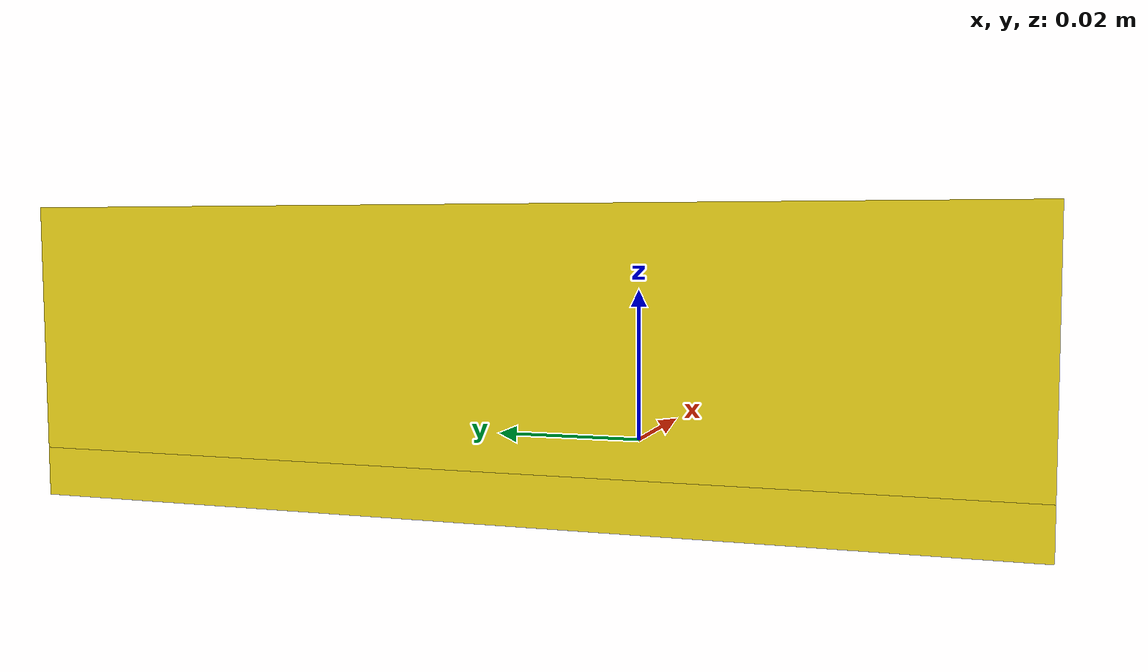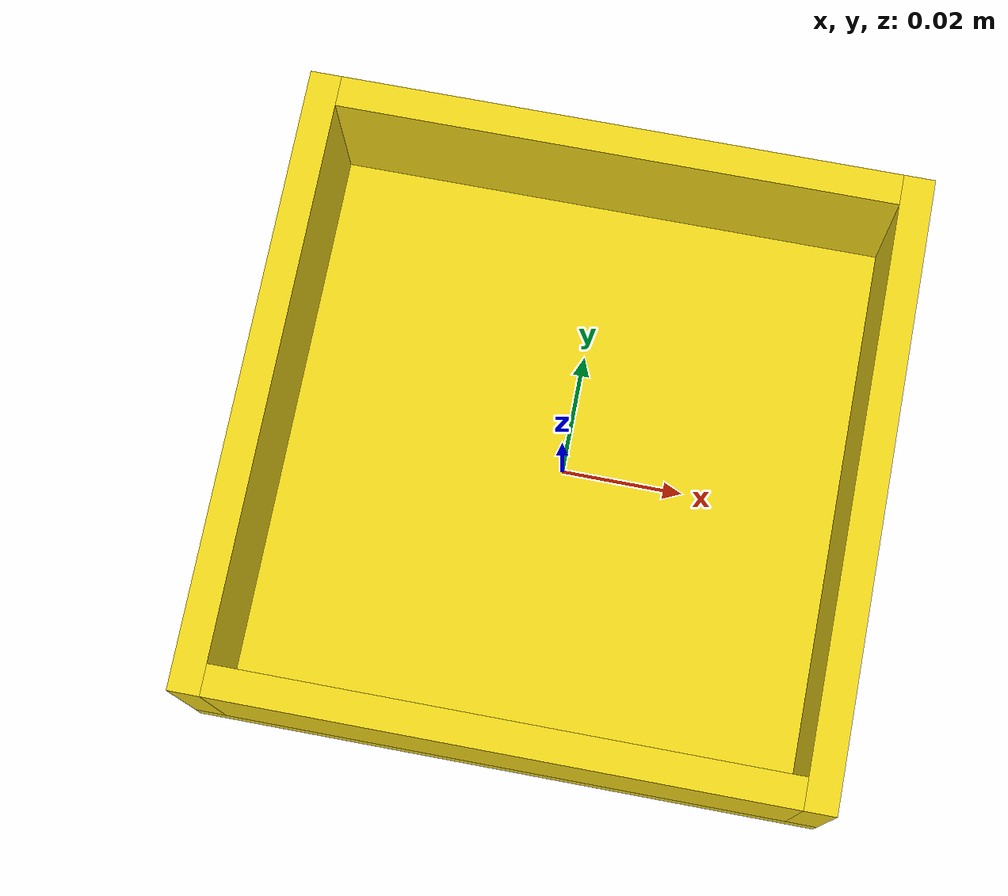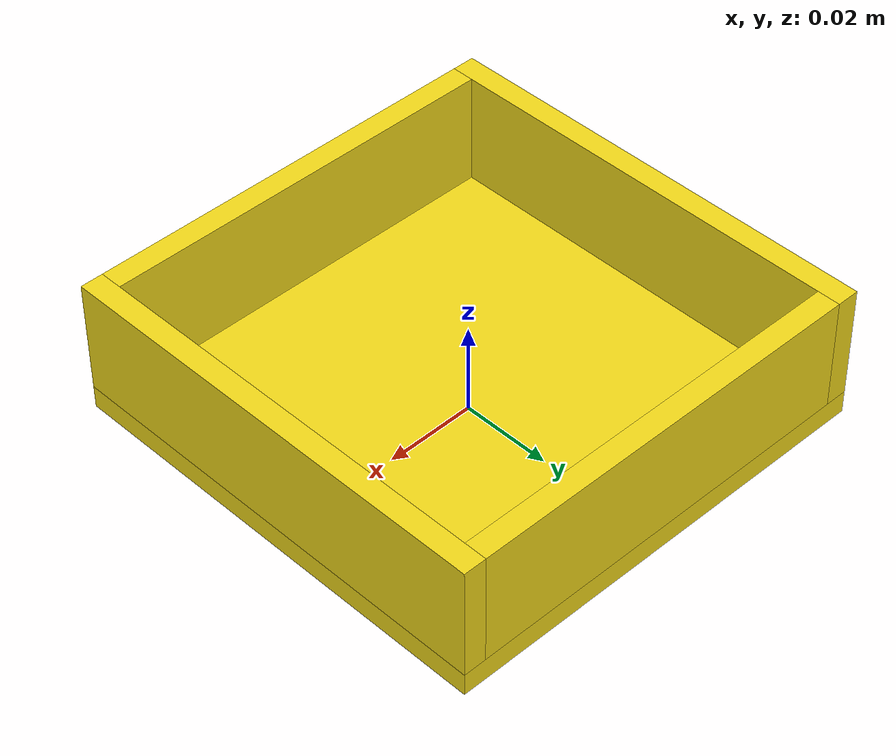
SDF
<?xml version="1.0" ?>
<sdf version="1.6">
  <model name="yellow_bin">
    <static>true</static>
    <link name="bin_link">
      <collision name="bottom_collision">
        <pose>0 0 0.0025 0 0 0</pose>
        <geometry>
          <box>
            <size>0.10 0.10 0.005</size>
          </box>
        </geometry>
      </collision>
      <collision name="left_wall_collision">
        <pose>-0.0475 0 0.0175 0 0 0</pose>
        <geometry>
          <box>
            <size>0.005 0.10 0.025</size>
          </box>
        </geometry>
      </collision>
      <collision name="right_wall_collision">
        <pose>0.0475 0 0.0175 0 0 0</pose>
        <geometry>
          <box>
            <size>0.005 0.10 0.025</size>
          </box>
        </geometry>
      </collision>
      <collision name="front_wall_collision">
        <pose>0 0.0475 0.0175 0 0 0</pose>
        <geometry>
          <box>
            <size>0.09 0.005 0.025</size>
          </box>
        </geometry>
      </collision>
      <collision name="back_wall_collision">
        <pose>0 -0.0475 0.0175 0 0 0</pose>
        <geometry>
          <box>
            <size>0.09 0.005 0.025</size>
          </box>
        </geometry>
      </collision>

      <visual name="bottom_visual">
        <pose>0 0 0.0025 0 0 0</pose>
        <geometry>
          <box>
            <size>0.10 0.10 0.005</size>
          </box>
        </geometry>
        <material>
          <ambient>0.95 0.85 0.1 1.0</ambient>
          <diffuse>0.95 0.85 0.1 1.0</diffuse>
        </material>
      </visual>
      <visual name="left_wall_visual">
        <pose>-0.0475 0 0.0175 0 0 0</pose>
        <geometry>
          <box>
            <size>0.005 0.10 0.025</size>
          </box>
        </geometry>
        <material>
          <ambient>0.95 0.85 0.1 1.0</ambient>
          <diffuse>0.95 0.85 0.1 1.0</diffuse>
        </material>
      </visual>
      <visual name="right_wall_visual">
        <pose>0.0475 0 0.0175 0 0 0</pose>
        <geometry>
          <box>
            <size>0.005 0.10 0.025</size>
          </box>
        </geometry>
        <material>
          <ambient>0.95 0.85 0.1 1.0</ambient>
          <diffuse>0.95 0.85 0.1 1.0</diffuse>
        </material>
      </visual>
      <visual name="front_wall_visual">
        <pose>0 0.0475 0.0175 0 0 0</pose>
        <geometry>
          <box>
            <size>0.09 0.005 0.025</size>
          </box>
        </geometry>
        <material>
          <ambient>0.95 0.85 0.1 1.0</ambient>
          <diffuse>0.95 0.85 0.1 1.0</diffuse>
        </material>
      </visual>
      <visual name="back_wall_visual">
        <pose>0 -0.0475 0.0175 0 0 0</pose>
        <geometry>
          <box>
            <size>0.09 0.005 0.025</size>
          </box>
        </geometry>
        <material>
          <ambient>0.95 0.85 0.1 1.0</ambient>
          <diffuse>0.95 0.85 0.1 1.0</diffuse>
        </material>
      </visual>
    </link>
  </model>
</sdf>
